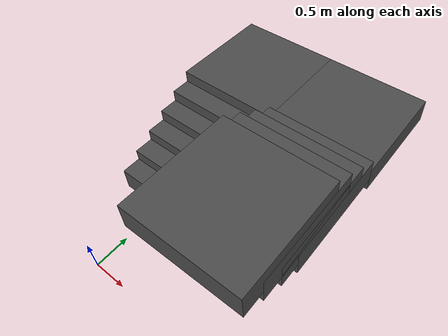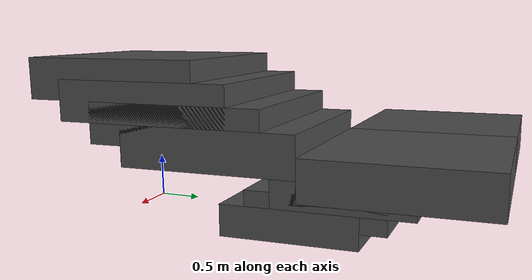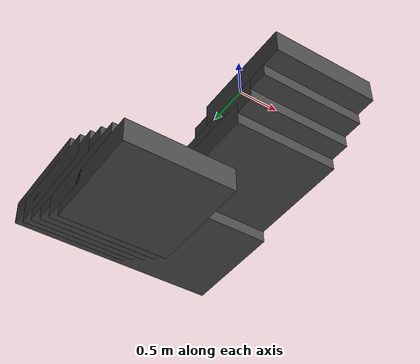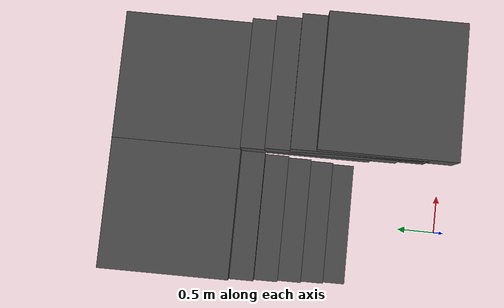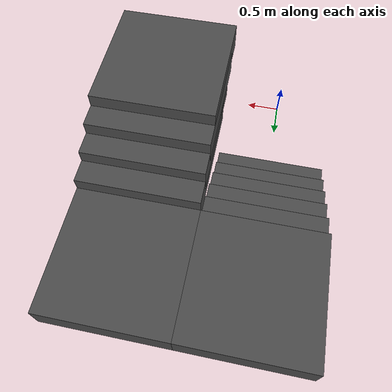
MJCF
<mujoco>
  <worldbody>
    <light diffuse=".5 .5 .5" pos="0 2 0.075" dir="0 0 -1"/>
    <body pos="0 2 0">
      <geom type="box" size=".8 .8 0.185" rgba="0.3 0.3 0.3 1"/>
    </body>
  </worldbody>

    <worldbody>
        <light diffuse=".5 .5 .5" pos="0 3 0.3" dir="0 0 -1"/>
    <body pos="0 2.3 0.185">
      <geom type="box" size=".8 .8 0.185" rgba="0.3 0.3 0.3 1"/>
    </body>
  </worldbody>

    <worldbody>
    <light diffuse=".5 .5 .5" pos="0 4 .5" dir="0 0 -1"/>
    <body pos="0 2.6 .37">
      <geom type="box" size=".8 .8 0.185" rgba="0.3 0.3 0.3 1"/>
    </body>
  </worldbody>
      <worldbody>
    <light diffuse=".5 .5 .5" pos="0 4 .5" dir="0 0 -1"/>
    <body pos="0 2.9 0.555">
      <geom type="box" size=".8 .8 0.185" rgba="0.3 0.3 0.3 1"/>
    </body>
  </worldbody>
        <worldbody>
    <light diffuse=".5 .5 .5" pos="0 4 .5" dir="0 0 -1"/>
    <body pos="0 3.2 0.74">
      <geom type="box" size=".8 .8 0.185" rgba="0.3 0.3 0.3 1"/>
    </body>
  </worldbody>
  <worldbody>
    <light diffuse=".5 .5 .5" pos="0 4 5" dir="0 0 -1"/>
    <body pos="0 3.5 0.925">
      <geom type="box" size=".8 .8 0.185" rgba="0.3 0.3 0.3 1"/>
    </body>
  </worldbody>

<!-- Starting second stair segment -->
  <worldbody>
    <body pos="1.6 3.5 0.925">
      <geom type="box" size=".8 .8 0.185" rgba="0.3 0.3 0.3 1"/>
    </body>
  </worldbody>

  <worldbody>
    <body pos="1.6 1.9 1.11">
      <geom type="box" size=".8 .8 0.185" rgba="0.3 0.3 0.3 1"/>
    </body>
  </worldbody>

  <worldbody>
    <body pos="1.6 1.6 1.295">
      <geom type="box" size=".8 .8 0.185" rgba="0.3 0.3 0.3 1"/>
    </body>
  </worldbody>

  <worldbody>
    <body pos="1.6 1.3 1.48">
      <geom type="box" size=".8 .8 0.185" rgba="0.3 0.3 0.3 1"/>
    </body>
  </worldbody>

    <worldbody>
    <body pos="1.6 1.0 1.665">
      <geom type="box" size=".8 .8 0.185" rgba="0.3 0.3 0.3 1"/>
    </body>
  </worldbody>

</mujoco>
